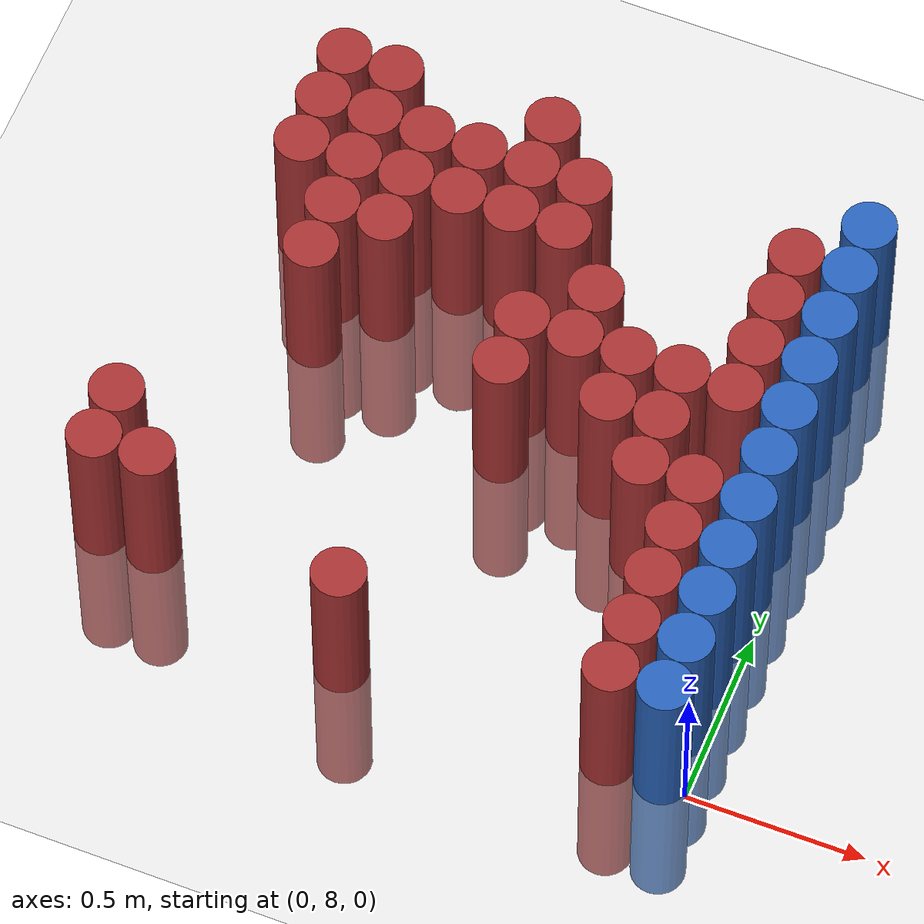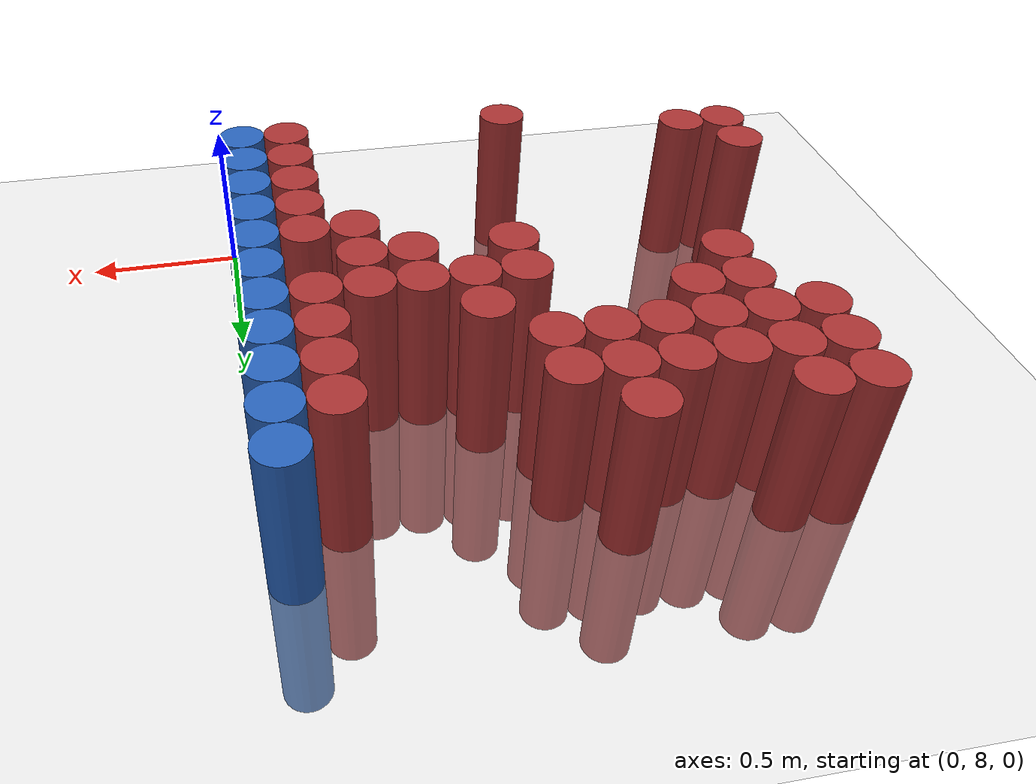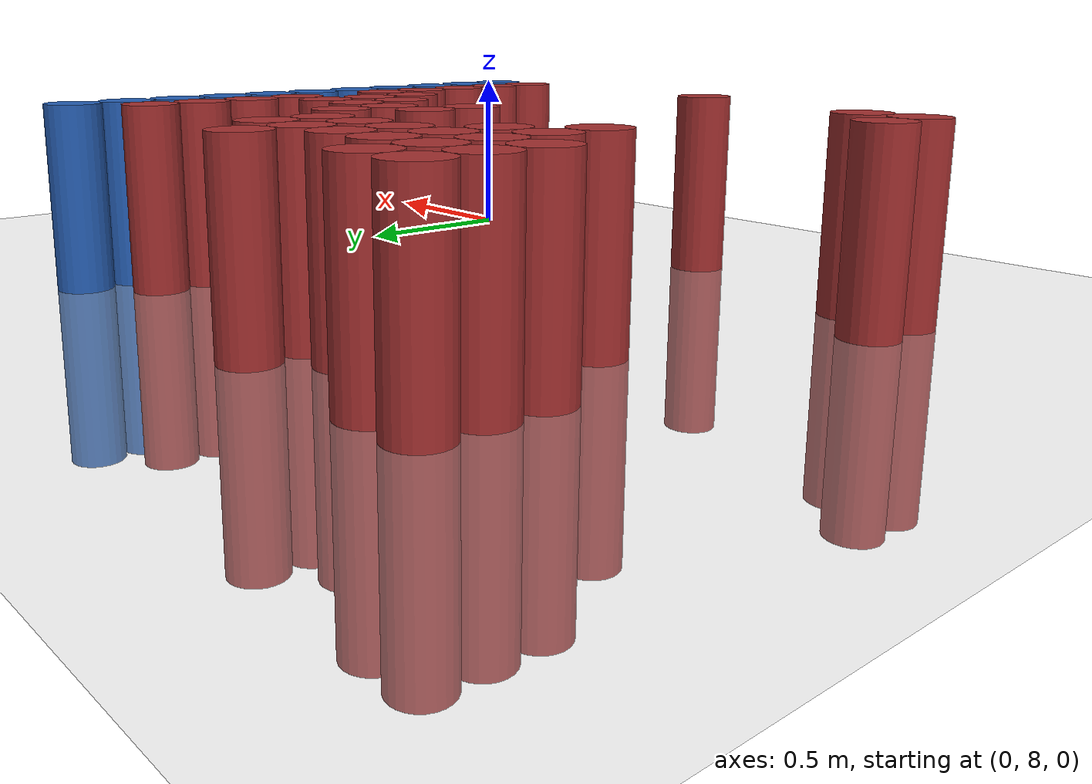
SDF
<sdf version="1.6">
 <world name="default">
  <model name="ground_plane">
   <static>1</static>
   <link name="link">
    <collision name="collision">
     <geometry><plane><normal>0 0 1</normal><size>100 100</size></plane></geometry>
     <surface><friction><ode><mu>100</mu><mu2>50</mu2></ode></friction></surface>
    </collision>
    <visual name="visual">
     <cast_shadows>0</cast_shadows>
     <geometry><plane><normal>0 0 1</normal><size>100 100</size></plane></geometry>
     <material>
      <script><uri>file://media/materials/scripts/gazebo.material</uri><name>Gazebo/Grey</name></script>
     </material>
    </visual>
   </link>
  </model>
  <model name="unit_cylinder_226">
   <static>1</static>
   <pose>-1.725000 8.175000 0.000000 0.000000 0.000000 0.000000</pose>
   <link name="link">
    <inertial>
     <mass>1</mass>
     <inertia><ixx>0.145833</ixx><ixy>0</ixy><ixz>0</ixz><iyy>0.145833</iyy><iyz>0</iyz><izz>0.125</izz></inertia>
    </inertial>
    <collision name="collision">
     <geometry><cylinder><radius>0.075000</radius><length>1</length></cylinder></geometry>
    </collision>
    <visual name="visual">
     <geometry><cylinder><radius>0.075000</radius><length>1</length></cylinder></geometry>
     <material>
      <ambient>0.648000 0.192000 0.192000 1</ambient>
      <diffuse>0.648000 0.192000 0.192000 1</diffuse>
     </material>
     <material>
      <script><name>Gazebo/Grey</name><uri>file://media/materials/scripts/gazebo.material</uri></script>
     </material>
    </visual>
   </link>
  </model>
  <model name="unit_cylinder_227">
   <static>1</static>
   <pose>-1.725000 8.325000 0.000000 0.000000 0.000000 0.000000</pose>
   <link name="link">
    <inertial>
     <mass>1</mass>
     <inertia><ixx>0.145833</ixx><ixy>0</ixy><ixz>0</ixz><iyy>0.145833</iyy><iyz>0</iyz><izz>0.125</izz></inertia>
    </inertial>
    <collision name="collision">
     <geometry><cylinder><radius>0.075000</radius><length>1</length></cylinder></geometry>
    </collision>
    <visual name="visual">
     <geometry><cylinder><radius>0.075000</radius><length>1</length></cylinder></geometry>
     <material>
      <ambient>0.648000 0.192000 0.192000 1</ambient>
      <diffuse>0.648000 0.192000 0.192000 1</diffuse>
     </material>
     <material>
      <script><name>Gazebo/Grey</name><uri>file://media/materials/scripts/gazebo.material</uri></script>
     </material>
    </visual>
   </link>
  </model>
  <model name="unit_cylinder_236">
   <static>1</static>
   <pose>-1.575000 8.175000 0.000000 0.000000 0.000000 0.000000</pose>
   <link name="link">
    <inertial>
     <mass>1</mass>
     <inertia><ixx>0.145833</ixx><ixy>0</ixy><ixz>0</ixz><iyy>0.145833</iyy><iyz>0</iyz><izz>0.125</izz></inertia>
    </inertial>
    <collision name="collision">
     <geometry><cylinder><radius>0.075000</radius><length>1</length></cylinder></geometry>
    </collision>
    <visual name="visual">
     <geometry><cylinder><radius>0.075000</radius><length>1</length></cylinder></geometry>
     <material>
      <ambient>0.648000 0.192000 0.192000 1</ambient>
      <diffuse>0.648000 0.192000 0.192000 1</diffuse>
     </material>
     <material>
      <script><name>Gazebo/Grey</name><uri>file://media/materials/scripts/gazebo.material</uri></script>
     </material>
    </visual>
   </link>
  </model>
  <model name="unit_cylinder_237">
   <static>1</static>
   <pose>-1.575000 9.225000 0.000000 0.000000 0.000000 0.000000</pose>
   <link name="link">
    <inertial>
     <mass>1</mass>
     <inertia><ixx>0.145833</ixx><ixy>0</ixy><ixz>0</ixz><iyy>0.145833</iyy><iyz>0</iyz><izz>0.125</izz></inertia>
    </inertial>
    <collision name="collision">
     <geometry><cylinder><radius>0.075000</radius><length>1</length></cylinder></geometry>
    </collision>
    <visual name="visual">
     <geometry><cylinder><radius>0.075000</radius><length>1</length></cylinder></geometry>
     <material>
      <ambient>0.648000 0.192000 0.192000 1</ambient>
      <diffuse>0.648000 0.192000 0.192000 1</diffuse>
     </material>
     <material>
      <script><name>Gazebo/Grey</name><uri>file://media/materials/scripts/gazebo.material</uri></script>
     </material>
    </visual>
   </link>
  </model>
  <model name="unit_cylinder_238">
   <static>1</static>
   <pose>-1.575000 9.375000 0.000000 0.000000 0.000000 0.000000</pose>
   <link name="link">
    <inertial>
     <mass>1</mass>
     <inertia><ixx>0.145833</ixx><ixy>0</ixy><ixz>0</ixz><iyy>0.145833</iyy><iyz>0</iyz><izz>0.125</izz></inertia>
    </inertial>
    <collision name="collision">
     <geometry><cylinder><radius>0.075000</radius><length>1</length></cylinder></geometry>
    </collision>
    <visual name="visual">
     <geometry><cylinder><radius>0.075000</radius><length>1</length></cylinder></geometry>
     <material>
      <ambient>0.648000 0.192000 0.192000 1</ambient>
      <diffuse>0.648000 0.192000 0.192000 1</diffuse>
     </material>
     <material>
      <script><name>Gazebo/Grey</name><uri>file://media/materials/scripts/gazebo.material</uri></script>
     </material>
    </visual>
   </link>
  </model>
  <model name="unit_cylinder_239">
   <static>1</static>
   <pose>-1.575000 9.525000 0.000000 0.000000 0.000000 0.000000</pose>
   <link name="link">
    <inertial>
     <mass>1</mass>
     <inertia><ixx>0.145833</ixx><ixy>0</ixy><ixz>0</ixz><iyy>0.145833</iyy><iyz>0</iyz><izz>0.125</izz></inertia>
    </inertial>
    <collision name="collision">
     <geometry><cylinder><radius>0.075000</radius><length>1</length></cylinder></geometry>
    </collision>
    <visual name="visual">
     <geometry><cylinder><radius>0.075000</radius><length>1</length></cylinder></geometry>
     <material>
      <ambient>0.648000 0.192000 0.192000 1</ambient>
      <diffuse>0.648000 0.192000 0.192000 1</diffuse>
     </material>
     <material>
      <script><name>Gazebo/Grey</name><uri>file://media/materials/scripts/gazebo.material</uri></script>
     </material>
    </visual>
   </link>
  </model>
  <model name="unit_cylinder_242">
   <static>1</static>
   <pose>-1.425000 8.925000 0.000000 0.000000 0.000000 0.000000</pose>
   <link name="link">
    <inertial>
     <mass>1</mass>
     <inertia><ixx>0.145833</ixx><ixy>0</ixy><ixz>0</ixz><iyy>0.145833</iyy><iyz>0</iyz><izz>0.125</izz></inertia>
    </inertial>
    <collision name="collision">
     <geometry><cylinder><radius>0.075000</radius><length>1</length></cylinder></geometry>
    </collision>
    <visual name="visual">
     <geometry><cylinder><radius>0.075000</radius><length>1</length></cylinder></geometry>
     <material>
      <ambient>0.648000 0.192000 0.192000 1</ambient>
      <diffuse>0.648000 0.192000 0.192000 1</diffuse>
     </material>
     <material>
      <script><name>Gazebo/Grey</name><uri>file://media/materials/scripts/gazebo.material</uri></script>
     </material>
    </visual>
   </link>
  </model>
  <model name="unit_cylinder_243">
   <static>1</static>
   <pose>-1.425000 9.075000 0.000000 0.000000 0.000000 0.000000</pose>
   <link name="link">
    <inertial>
     <mass>1</mass>
     <inertia><ixx>0.145833</ixx><ixy>0</ixy><ixz>0</ixz><iyy>0.145833</iyy><iyz>0</iyz><izz>0.125</izz></inertia>
    </inertial>
    <collision name="collision">
     <geometry><cylinder><radius>0.075000</radius><length>1</length></cylinder></geometry>
    </collision>
    <visual name="visual">
     <geometry><cylinder><radius>0.075000</radius><length>1</length></cylinder></geometry>
     <material>
      <ambient>0.648000 0.192000 0.192000 1</ambient>
      <diffuse>0.648000 0.192000 0.192000 1</diffuse>
     </material>
     <material>
      <script><name>Gazebo/Grey</name><uri>file://media/materials/scripts/gazebo.material</uri></script>
     </material>
    </visual>
   </link>
  </model>
  <model name="unit_cylinder_244">
   <static>1</static>
   <pose>-1.425000 9.225000 0.000000 0.000000 0.000000 0.000000</pose>
   <link name="link">
    <inertial>
     <mass>1</mass>
     <inertia><ixx>0.145833</ixx><ixy>0</ixy><ixz>0</ixz><iyy>0.145833</iyy><iyz>0</iyz><izz>0.125</izz></inertia>
    </inertial>
    <collision name="collision">
     <geometry><cylinder><radius>0.075000</radius><length>1</length></cylinder></geometry>
    </collision>
    <visual name="visual">
     <geometry><cylinder><radius>0.075000</radius><length>1</length></cylinder></geometry>
     <material>
      <ambient>0.648000 0.192000 0.192000 1</ambient>
      <diffuse>0.648000 0.192000 0.192000 1</diffuse>
     </material>
     <material>
      <script><name>Gazebo/Grey</name><uri>file://media/materials/scripts/gazebo.material</uri></script>
     </material>
    </visual>
   </link>
  </model>
  <model name="unit_cylinder_245">
   <static>1</static>
   <pose>-1.425000 9.375000 0.000000 0.000000 0.000000 0.000000</pose>
   <link name="link">
    <inertial>
     <mass>1</mass>
     <inertia><ixx>0.145833</ixx><ixy>0</ixy><ixz>0</ixz><iyy>0.145833</iyy><iyz>0</iyz><izz>0.125</izz></inertia>
    </inertial>
    <collision name="collision">
     <geometry><cylinder><radius>0.075000</radius><length>1</length></cylinder></geometry>
    </collision>
    <visual name="visual">
     <geometry><cylinder><radius>0.075000</radius><length>1</length></cylinder></geometry>
     <material>
      <ambient>0.648000 0.192000 0.192000 1</ambient>
      <diffuse>0.648000 0.192000 0.192000 1</diffuse>
     </material>
     <material>
      <script><name>Gazebo/Grey</name><uri>file://media/materials/scripts/gazebo.material</uri></script>
     </material>
    </visual>
   </link>
  </model>
  <model name="unit_cylinder_246">
   <static>1</static>
   <pose>-1.425000 9.525000 0.000000 0.000000 0.000000 0.000000</pose>
   <link name="link">
    <inertial>
     <mass>1</mass>
     <inertia><ixx>0.145833</ixx><ixy>0</ixy><ixz>0</ixz><iyy>0.145833</iyy><iyz>0</iyz><izz>0.125</izz></inertia>
    </inertial>
    <collision name="collision">
     <geometry><cylinder><radius>0.075000</radius><length>1</length></cylinder></geometry>
    </collision>
    <visual name="visual">
     <geometry><cylinder><radius>0.075000</radius><length>1</length></cylinder></geometry>
     <material>
      <ambient>0.648000 0.192000 0.192000 1</ambient>
      <diffuse>0.648000 0.192000 0.192000 1</diffuse>
     </material>
     <material>
      <script><name>Gazebo/Grey</name><uri>file://media/materials/scripts/gazebo.material</uri></script>
     </material>
    </visual>
   </link>
  </model>
  <model name="unit_cylinder_249">
   <static>1</static>
   <pose>-1.275000 9.075000 0.000000 0.000000 0.000000 0.000000</pose>
   <link name="link">
    <inertial>
     <mass>1</mass>
     <inertia><ixx>0.145833</ixx><ixy>0</ixy><ixz>0</ixz><iyy>0.145833</iyy><iyz>0</iyz><izz>0.125</izz></inertia>
    </inertial>
    <collision name="collision">
     <geometry><cylinder><radius>0.075000</radius><length>1</length></cylinder></geometry>
    </collision>
    <visual name="visual">
     <geometry><cylinder><radius>0.075000</radius><length>1</length></cylinder></geometry>
     <material>
      <ambient>0.648000 0.192000 0.192000 1</ambient>
      <diffuse>0.648000 0.192000 0.192000 1</diffuse>
     </material>
     <material>
      <script><name>Gazebo/Grey</name><uri>file://media/materials/scripts/gazebo.material</uri></script>
     </material>
    </visual>
   </link>
  </model>
  <model name="unit_cylinder_250">
   <static>1</static>
   <pose>-1.275000 9.225000 0.000000 0.000000 0.000000 0.000000</pose>
   <link name="link">
    <inertial>
     <mass>1</mass>
     <inertia><ixx>0.145833</ixx><ixy>0</ixy><ixz>0</ixz><iyy>0.145833</iyy><iyz>0</iyz><izz>0.125</izz></inertia>
    </inertial>
    <collision name="collision">
     <geometry><cylinder><radius>0.075000</radius><length>1</length></cylinder></geometry>
    </collision>
    <visual name="visual">
     <geometry><cylinder><radius>0.075000</radius><length>1</length></cylinder></geometry>
     <material>
      <ambient>0.648000 0.192000 0.192000 1</ambient>
      <diffuse>0.648000 0.192000 0.192000 1</diffuse>
     </material>
     <material>
      <script><name>Gazebo/Grey</name><uri>file://media/materials/scripts/gazebo.material</uri></script>
     </material>
    </visual>
   </link>
  </model>
  <model name="unit_cylinder_251">
   <static>1</static>
   <pose>-1.275000 9.375000 0.000000 0.000000 0.000000 0.000000</pose>
   <link name="link">
    <inertial>
     <mass>1</mass>
     <inertia><ixx>0.145833</ixx><ixy>0</ixy><ixz>0</ixz><iyy>0.145833</iyy><iyz>0</iyz><izz>0.125</izz></inertia>
    </inertial>
    <collision name="collision">
     <geometry><cylinder><radius>0.075000</radius><length>1</length></cylinder></geometry>
    </collision>
    <visual name="visual">
     <geometry><cylinder><radius>0.075000</radius><length>1</length></cylinder></geometry>
     <material>
      <ambient>0.648000 0.192000 0.192000 1</ambient>
      <diffuse>0.648000 0.192000 0.192000 1</diffuse>
     </material>
     <material>
      <script><name>Gazebo/Grey</name><uri>file://media/materials/scripts/gazebo.material</uri></script>
     </material>
    </visual>
   </link>
  </model>
  <model name="unit_cylinder_260">
   <static>1</static>
   <pose>-1.125000 9.225000 0.000000 0.000000 0.000000 0.000000</pose>
   <link name="link">
    <inertial>
     <mass>1</mass>
     <inertia><ixx>0.145833</ixx><ixy>0</ixy><ixz>0</ixz><iyy>0.145833</iyy><iyz>0</iyz><izz>0.125</izz></inertia>
    </inertial>
    <collision name="collision">
     <geometry><cylinder><radius>0.075000</radius><length>1</length></cylinder></geometry>
    </collision>
    <visual name="visual">
     <geometry><cylinder><radius>0.075000</radius><length>1</length></cylinder></geometry>
     <material>
      <ambient>0.648000 0.192000 0.192000 1</ambient>
      <diffuse>0.648000 0.192000 0.192000 1</diffuse>
     </material>
     <material>
      <script><name>Gazebo/Grey</name><uri>file://media/materials/scripts/gazebo.material</uri></script>
     </material>
    </visual>
   </link>
  </model>
  <model name="unit_cylinder_261">
   <static>1</static>
   <pose>-1.125000 9.375000 0.000000 0.000000 0.000000 0.000000</pose>
   <link name="link">
    <inertial>
     <mass>1</mass>
     <inertia><ixx>0.145833</ixx><ixy>0</ixy><ixz>0</ixz><iyy>0.145833</iyy><iyz>0</iyz><izz>0.125</izz></inertia>
    </inertial>
    <collision name="collision">
     <geometry><cylinder><radius>0.075000</radius><length>1</length></cylinder></geometry>
    </collision>
    <visual name="visual">
     <geometry><cylinder><radius>0.075000</radius><length>1</length></cylinder></geometry>
     <material>
      <ambient>0.648000 0.192000 0.192000 1</ambient>
      <diffuse>0.648000 0.192000 0.192000 1</diffuse>
     </material>
     <material>
      <script><name>Gazebo/Grey</name><uri>file://media/materials/scripts/gazebo.material</uri></script>
     </material>
    </visual>
   </link>
  </model>
  <model name="unit_cylinder_267">
   <static>1</static>
   <pose>-0.975000 8.025000 0.000000 0.000000 0.000000 0.000000</pose>
   <link name="link">
    <inertial>
     <mass>1</mass>
     <inertia><ixx>0.145833</ixx><ixy>0</ixy><ixz>0</ixz><iyy>0.145833</iyy><iyz>0</iyz><izz>0.125</izz></inertia>
    </inertial>
    <collision name="collision">
     <geometry><cylinder><radius>0.075000</radius><length>1</length></cylinder></geometry>
    </collision>
    <visual name="visual">
     <geometry><cylinder><radius>0.075000</radius><length>1</length></cylinder></geometry>
     <material>
      <ambient>0.648000 0.192000 0.192000 1</ambient>
      <diffuse>0.648000 0.192000 0.192000 1</diffuse>
     </material>
     <material>
      <script><name>Gazebo/Grey</name><uri>file://media/materials/scripts/gazebo.material</uri></script>
     </material>
    </visual>
   </link>
  </model>
  <model name="unit_cylinder_268">
   <static>1</static>
   <pose>-0.975000 9.225000 0.000000 0.000000 0.000000 0.000000</pose>
   <link name="link">
    <inertial>
     <mass>1</mass>
     <inertia><ixx>0.145833</ixx><ixy>0</ixy><ixz>0</ixz><iyy>0.145833</iyy><iyz>0</iyz><izz>0.125</izz></inertia>
    </inertial>
    <collision name="collision">
     <geometry><cylinder><radius>0.075000</radius><length>1</length></cylinder></geometry>
    </collision>
    <visual name="visual">
     <geometry><cylinder><radius>0.075000</radius><length>1</length></cylinder></geometry>
     <material>
      <ambient>0.648000 0.192000 0.192000 1</ambient>
      <diffuse>0.648000 0.192000 0.192000 1</diffuse>
     </material>
     <material>
      <script><name>Gazebo/Grey</name><uri>file://media/materials/scripts/gazebo.material</uri></script>
     </material>
    </visual>
   </link>
  </model>
  <model name="unit_cylinder_269">
   <static>1</static>
   <pose>-0.975000 9.375000 0.000000 0.000000 0.000000 0.000000</pose>
   <link name="link">
    <inertial>
     <mass>1</mass>
     <inertia><ixx>0.145833</ixx><ixy>0</ixy><ixz>0</ixz><iyy>0.145833</iyy><iyz>0</iyz><izz>0.125</izz></inertia>
    </inertial>
    <collision name="collision">
     <geometry><cylinder><radius>0.075000</radius><length>1</length></cylinder></geometry>
    </collision>
    <visual name="visual">
     <geometry><cylinder><radius>0.075000</radius><length>1</length></cylinder></geometry>
     <material>
      <ambient>0.648000 0.192000 0.192000 1</ambient>
      <diffuse>0.648000 0.192000 0.192000 1</diffuse>
     </material>
     <material>
      <script><name>Gazebo/Grey</name><uri>file://media/materials/scripts/gazebo.material</uri></script>
     </material>
    </visual>
   </link>
  </model>
  <model name="unit_cylinder_270">
   <static>1</static>
   <pose>-0.975000 9.525000 0.000000 0.000000 0.000000 0.000000</pose>
   <link name="link">
    <inertial>
     <mass>1</mass>
     <inertia><ixx>0.145833</ixx><ixy>0</ixy><ixz>0</ixz><iyy>0.145833</iyy><iyz>0</iyz><izz>0.125</izz></inertia>
    </inertial>
    <collision name="collision">
     <geometry><cylinder><radius>0.075000</radius><length>1</length></cylinder></geometry>
    </collision>
    <visual name="visual">
     <geometry><cylinder><radius>0.075000</radius><length>1</length></cylinder></geometry>
     <material>
      <ambient>0.648000 0.192000 0.192000 1</ambient>
      <diffuse>0.648000 0.192000 0.192000 1</diffuse>
     </material>
     <material>
      <script><name>Gazebo/Grey</name><uri>file://media/materials/scripts/gazebo.material</uri></script>
     </material>
    </visual>
   </link>
  </model>
  <model name="unit_cylinder_278">
   <static>1</static>
   <pose>-0.825000 8.775000 0.000000 0.000000 0.000000 0.000000</pose>
   <link name="link">
    <inertial>
     <mass>1</mass>
     <inertia><ixx>0.145833</ixx><ixy>0</ixy><ixz>0</ixz><iyy>0.145833</iyy><iyz>0</iyz><izz>0.125</izz></inertia>
    </inertial>
    <collision name="collision">
     <geometry><cylinder><radius>0.075000</radius><length>1</length></cylinder></geometry>
    </collision>
    <visual name="visual">
     <geometry><cylinder><radius>0.075000</radius><length>1</length></cylinder></geometry>
     <material>
      <ambient>0.648000 0.192000 0.192000 1</ambient>
      <diffuse>0.648000 0.192000 0.192000 1</diffuse>
     </material>
     <material>
      <script><name>Gazebo/Grey</name><uri>file://media/materials/scripts/gazebo.material</uri></script>
     </material>
    </visual>
   </link>
  </model>
  <model name="unit_cylinder_279">
   <static>1</static>
   <pose>-0.825000 8.925000 0.000000 0.000000 0.000000 0.000000</pose>
   <link name="link">
    <inertial>
     <mass>1</mass>
     <inertia><ixx>0.145833</ixx><ixy>0</ixy><ixz>0</ixz><iyy>0.145833</iyy><iyz>0</iyz><izz>0.125</izz></inertia>
    </inertial>
    <collision name="collision">
     <geometry><cylinder><radius>0.075000</radius><length>1</length></cylinder></geometry>
    </collision>
    <visual name="visual">
     <geometry><cylinder><radius>0.075000</radius><length>1</length></cylinder></geometry>
     <material>
      <ambient>0.648000 0.192000 0.192000 1</ambient>
      <diffuse>0.648000 0.192000 0.192000 1</diffuse>
     </material>
     <material>
      <script><name>Gazebo/Grey</name><uri>file://media/materials/scripts/gazebo.material</uri></script>
     </material>
    </visual>
   </link>
  </model>
  <model name="unit_cylinder_280">
   <static>1</static>
   <pose>-0.825000 9.225000 0.000000 0.000000 0.000000 0.000000</pose>
   <link name="link">
    <inertial>
     <mass>1</mass>
     <inertia><ixx>0.145833</ixx><ixy>0</ixy><ixz>0</ixz><iyy>0.145833</iyy><iyz>0</iyz><izz>0.125</izz></inertia>
    </inertial>
    <collision name="collision">
     <geometry><cylinder><radius>0.075000</radius><length>1</length></cylinder></geometry>
    </collision>
    <visual name="visual">
     <geometry><cylinder><radius>0.075000</radius><length>1</length></cylinder></geometry>
     <material>
      <ambient>0.648000 0.192000 0.192000 1</ambient>
      <diffuse>0.648000 0.192000 0.192000 1</diffuse>
     </material>
     <material>
      <script><name>Gazebo/Grey</name><uri>file://media/materials/scripts/gazebo.material</uri></script>
     </material>
    </visual>
   </link>
  </model>
  <model name="unit_cylinder_281">
   <static>1</static>
   <pose>-0.825000 9.375000 0.000000 0.000000 0.000000 0.000000</pose>
   <link name="link">
    <inertial>
     <mass>1</mass>
     <inertia><ixx>0.145833</ixx><ixy>0</ixy><ixz>0</ixz><iyy>0.145833</iyy><iyz>0</iyz><izz>0.125</izz></inertia>
    </inertial>
    <collision name="collision">
     <geometry><cylinder><radius>0.075000</radius><length>1</length></cylinder></geometry>
    </collision>
    <visual name="visual">
     <geometry><cylinder><radius>0.075000</radius><length>1</length></cylinder></geometry>
     <material>
      <ambient>0.648000 0.192000 0.192000 1</ambient>
      <diffuse>0.648000 0.192000 0.192000 1</diffuse>
     </material>
     <material>
      <script><name>Gazebo/Grey</name><uri>file://media/materials/scripts/gazebo.material</uri></script>
     </material>
    </visual>
   </link>
  </model>
  <model name="unit_cylinder_288">
   <static>1</static>
   <pose>-0.675000 8.925000 0.000000 0.000000 0.000000 0.000000</pose>
   <link name="link">
    <inertial>
     <mass>1</mass>
     <inertia><ixx>0.145833</ixx><ixy>0</ixy><ixz>0</ixz><iyy>0.145833</iyy><iyz>0</iyz><izz>0.125</izz></inertia>
    </inertial>
    <collision name="collision">
     <geometry><cylinder><radius>0.075000</radius><length>1</length></cylinder></geometry>
    </collision>
    <visual name="visual">
     <geometry><cylinder><radius>0.075000</radius><length>1</length></cylinder></geometry>
     <material>
      <ambient>0.648000 0.192000 0.192000 1</ambient>
      <diffuse>0.648000 0.192000 0.192000 1</diffuse>
     </material>
     <material>
      <script><name>Gazebo/Grey</name><uri>file://media/materials/scripts/gazebo.material</uri></script>
     </material>
    </visual>
   </link>
  </model>
  <model name="unit_cylinder_289">
   <static>1</static>
   <pose>-0.675000 9.075000 0.000000 0.000000 0.000000 0.000000</pose>
   <link name="link">
    <inertial>
     <mass>1</mass>
     <inertia><ixx>0.145833</ixx><ixy>0</ixy><ixz>0</ixz><iyy>0.145833</iyy><iyz>0</iyz><izz>0.125</izz></inertia>
    </inertial>
    <collision name="collision">
     <geometry><cylinder><radius>0.075000</radius><length>1</length></cylinder></geometry>
    </collision>
    <visual name="visual">
     <geometry><cylinder><radius>0.075000</radius><length>1</length></cylinder></geometry>
     <material>
      <ambient>0.648000 0.192000 0.192000 1</ambient>
      <diffuse>0.648000 0.192000 0.192000 1</diffuse>
     </material>
     <material>
      <script><name>Gazebo/Grey</name><uri>file://media/materials/scripts/gazebo.material</uri></script>
     </material>
    </visual>
   </link>
  </model>
  <model name="unit_cylinder_293">
   <static>1</static>
   <pose>-0.525000 8.775000 0.000000 0.000000 0.000000 0.000000</pose>
   <link name="link">
    <inertial>
     <mass>1</mass>
     <inertia><ixx>0.145833</ixx><ixy>0</ixy><ixz>0</ixz><iyy>0.145833</iyy><iyz>0</iyz><izz>0.125</izz></inertia>
    </inertial>
    <collision name="collision">
     <geometry><cylinder><radius>0.075000</radius><length>1</length></cylinder></geometry>
    </collision>
    <visual name="visual">
     <geometry><cylinder><radius>0.075000</radius><length>1</length></cylinder></geometry>
     <material>
      <ambient>0.648000 0.192000 0.192000 1</ambient>
      <diffuse>0.648000 0.192000 0.192000 1</diffuse>
     </material>
     <material>
      <script><name>Gazebo/Grey</name><uri>file://media/materials/scripts/gazebo.material</uri></script>
     </material>
    </visual>
   </link>
  </model>
  <model name="unit_cylinder_294">
   <static>1</static>
   <pose>-0.525000 8.925000 0.000000 0.000000 0.000000 0.000000</pose>
   <link name="link">
    <inertial>
     <mass>1</mass>
     <inertia><ixx>0.145833</ixx><ixy>0</ixy><ixz>0</ixz><iyy>0.145833</iyy><iyz>0</iyz><izz>0.125</izz></inertia>
    </inertial>
    <collision name="collision">
     <geometry><cylinder><radius>0.075000</radius><length>1</length></cylinder></geometry>
    </collision>
    <visual name="visual">
     <geometry><cylinder><radius>0.075000</radius><length>1</length></cylinder></geometry>
     <material>
      <ambient>0.648000 0.192000 0.192000 1</ambient>
      <diffuse>0.648000 0.192000 0.192000 1</diffuse>
     </material>
     <material>
      <script><name>Gazebo/Grey</name><uri>file://media/materials/scripts/gazebo.material</uri></script>
     </material>
    </visual>
   </link>
  </model>
  <model name="unit_cylinder_301">
   <static>1</static>
   <pose>-0.375000 8.625000 0.000000 0.000000 0.000000 0.000000</pose>
   <link name="link">
    <inertial>
     <mass>1</mass>
     <inertia><ixx>0.145833</ixx><ixy>0</ixy><ixz>0</ixz><iyy>0.145833</iyy><iyz>0</iyz><izz>0.125</izz></inertia>
    </inertial>
    <collision name="collision">
     <geometry><cylinder><radius>0.075000</radius><length>1</length></cylinder></geometry>
    </collision>
    <visual name="visual">
     <geometry><cylinder><radius>0.075000</radius><length>1</length></cylinder></geometry>
     <material>
      <ambient>0.648000 0.192000 0.192000 1</ambient>
      <diffuse>0.648000 0.192000 0.192000 1</diffuse>
     </material>
     <material>
      <script><name>Gazebo/Grey</name><uri>file://media/materials/scripts/gazebo.material</uri></script>
     </material>
    </visual>
   </link>
  </model>
  <model name="unit_cylinder_302">
   <static>1</static>
   <pose>-0.375000 8.775000 0.000000 0.000000 0.000000 0.000000</pose>
   <link name="link">
    <inertial>
     <mass>1</mass>
     <inertia><ixx>0.145833</ixx><ixy>0</ixy><ixz>0</ixz><iyy>0.145833</iyy><iyz>0</iyz><izz>0.125</izz></inertia>
    </inertial>
    <collision name="collision">
     <geometry><cylinder><radius>0.075000</radius><length>1</length></cylinder></geometry>
    </collision>
    <visual name="visual">
     <geometry><cylinder><radius>0.075000</radius><length>1</length></cylinder></geometry>
     <material>
      <ambient>0.648000 0.192000 0.192000 1</ambient>
      <diffuse>0.648000 0.192000 0.192000 1</diffuse>
     </material>
     <material>
      <script><name>Gazebo/Grey</name><uri>file://media/materials/scripts/gazebo.material</uri></script>
     </material>
    </visual>
   </link>
  </model>
  <model name="unit_cylinder_303">
   <static>1</static>
   <pose>-0.375000 8.925000 0.000000 0.000000 0.000000 0.000000</pose>
   <link name="link">
    <inertial>
     <mass>1</mass>
     <inertia><ixx>0.145833</ixx><ixy>0</ixy><ixz>0</ixz><iyy>0.145833</iyy><iyz>0</iyz><izz>0.125</izz></inertia>
    </inertial>
    <collision name="collision">
     <geometry><cylinder><radius>0.075000</radius><length>1</length></cylinder></geometry>
    </collision>
    <visual name="visual">
     <geometry><cylinder><radius>0.075000</radius><length>1</length></cylinder></geometry>
     <material>
      <ambient>0.648000 0.192000 0.192000 1</ambient>
      <diffuse>0.648000 0.192000 0.192000 1</diffuse>
     </material>
     <material>
      <script><name>Gazebo/Grey</name><uri>file://media/materials/scripts/gazebo.material</uri></script>
     </material>
    </visual>
   </link>
  </model>
  <model name="unit_cylinder_317">
   <static>1</static>
   <pose>-0.225000 8.025000 0.000000 0.000000 0.000000 0.000000</pose>
   <link name="link">
    <inertial>
     <mass>1</mass>
     <inertia><ixx>0.145833</ixx><ixy>0</ixy><ixz>0</ixz><iyy>0.145833</iyy><iyz>0</iyz><izz>0.125</izz></inertia>
    </inertial>
    <collision name="collision">
     <geometry><cylinder><radius>0.075000</radius><length>1</length></cylinder></geometry>
    </collision>
    <visual name="visual">
     <geometry><cylinder><radius>0.075000</radius><length>1</length></cylinder></geometry>
     <material>
      <ambient>0.648000 0.192000 0.192000 1</ambient>
      <diffuse>0.648000 0.192000 0.192000 1</diffuse>
     </material>
     <material>
      <script><name>Gazebo/Grey</name><uri>file://media/materials/scripts/gazebo.material</uri></script>
     </material>
    </visual>
   </link>
  </model>
  <model name="unit_cylinder_318">
   <static>1</static>
   <pose>-0.225000 8.175000 0.000000 0.000000 0.000000 0.000000</pose>
   <link name="link">
    <inertial>
     <mass>1</mass>
     <inertia><ixx>0.145833</ixx><ixy>0</ixy><ixz>0</ixz><iyy>0.145833</iyy><iyz>0</iyz><izz>0.125</izz></inertia>
    </inertial>
    <collision name="collision">
     <geometry><cylinder><radius>0.075000</radius><length>1</length></cylinder></geometry>
    </collision>
    <visual name="visual">
     <geometry><cylinder><radius>0.075000</radius><length>1</length></cylinder></geometry>
     <material>
      <ambient>0.648000 0.192000 0.192000 1</ambient>
      <diffuse>0.648000 0.192000 0.192000 1</diffuse>
     </material>
     <material>
      <script><name>Gazebo/Grey</name><uri>file://media/materials/scripts/gazebo.material</uri></script>
     </material>
    </visual>
   </link>
  </model>
  <model name="unit_cylinder_319">
   <static>1</static>
   <pose>-0.225000 8.325000 0.000000 0.000000 0.000000 0.000000</pose>
   <link name="link">
    <inertial>
     <mass>1</mass>
     <inertia><ixx>0.145833</ixx><ixy>0</ixy><ixz>0</ixz><iyy>0.145833</iyy><iyz>0</iyz><izz>0.125</izz></inertia>
    </inertial>
    <collision name="collision">
     <geometry><cylinder><radius>0.075000</radius><length>1</length></cylinder></geometry>
    </collision>
    <visual name="visual">
     <geometry><cylinder><radius>0.075000</radius><length>1</length></cylinder></geometry>
     <material>
      <ambient>0.648000 0.192000 0.192000 1</ambient>
      <diffuse>0.648000 0.192000 0.192000 1</diffuse>
     </material>
     <material>
      <script><name>Gazebo/Grey</name><uri>file://media/materials/scripts/gazebo.material</uri></script>
     </material>
    </visual>
   </link>
  </model>
  <model name="unit_cylinder_320">
   <static>1</static>
   <pose>-0.225000 8.475000 0.000000 0.000000 0.000000 0.000000</pose>
   <link name="link">
    <inertial>
     <mass>1</mass>
     <inertia><ixx>0.145833</ixx><ixy>0</ixy><ixz>0</ixz><iyy>0.145833</iyy><iyz>0</iyz><izz>0.125</izz></inertia>
    </inertial>
    <collision name="collision">
     <geometry><cylinder><radius>0.075000</radius><length>1</length></cylinder></geometry>
    </collision>
    <visual name="visual">
     <geometry><cylinder><radius>0.075000</radius><length>1</length></cylinder></geometry>
     <material>
      <ambient>0.648000 0.192000 0.192000 1</ambient>
      <diffuse>0.648000 0.192000 0.192000 1</diffuse>
     </material>
     <material>
      <script><name>Gazebo/Grey</name><uri>file://media/materials/scripts/gazebo.material</uri></script>
     </material>
    </visual>
   </link>
  </model>
  <model name="unit_cylinder_321">
   <static>1</static>
   <pose>-0.225000 8.625000 0.000000 0.000000 0.000000 0.000000</pose>
   <link name="link">
    <inertial>
     <mass>1</mass>
     <inertia><ixx>0.145833</ixx><ixy>0</ixy><ixz>0</ixz><iyy>0.145833</iyy><iyz>0</iyz><izz>0.125</izz></inertia>
    </inertial>
    <collision name="collision">
     <geometry><cylinder><radius>0.075000</radius><length>1</length></cylinder></geometry>
    </collision>
    <visual name="visual">
     <geometry><cylinder><radius>0.075000</radius><length>1</length></cylinder></geometry>
     <material>
      <ambient>0.648000 0.192000 0.192000 1</ambient>
      <diffuse>0.648000 0.192000 0.192000 1</diffuse>
     </material>
     <material>
      <script><name>Gazebo/Grey</name><uri>file://media/materials/scripts/gazebo.material</uri></script>
     </material>
    </visual>
   </link>
  </model>
  <model name="unit_cylinder_322">
   <static>1</static>
   <pose>-0.225000 8.925000 0.000000 0.000000 0.000000 0.000000</pose>
   <link name="link">
    <inertial>
     <mass>1</mass>
     <inertia><ixx>0.145833</ixx><ixy>0</ixy><ixz>0</ixz><iyy>0.145833</iyy><iyz>0</iyz><izz>0.125</izz></inertia>
    </inertial>
    <collision name="collision">
     <geometry><cylinder><radius>0.075000</radius><length>1</length></cylinder></geometry>
    </collision>
    <visual name="visual">
     <geometry><cylinder><radius>0.075000</radius><length>1</length></cylinder></geometry>
     <material>
      <ambient>0.648000 0.192000 0.192000 1</ambient>
      <diffuse>0.648000 0.192000 0.192000 1</diffuse>
     </material>
     <material>
      <script><name>Gazebo/Grey</name><uri>file://media/materials/scripts/gazebo.material</uri></script>
     </material>
    </visual>
   </link>
  </model>
  <model name="unit_cylinder_323">
   <static>1</static>
   <pose>-0.225000 9.075000 0.000000 0.000000 0.000000 0.000000</pose>
   <link name="link">
    <inertial>
     <mass>1</mass>
     <inertia><ixx>0.145833</ixx><ixy>0</ixy><ixz>0</ixz><iyy>0.145833</iyy><iyz>0</iyz><izz>0.125</izz></inertia>
    </inertial>
    <collision name="collision">
     <geometry><cylinder><radius>0.075000</radius><length>1</length></cylinder></geometry>
    </collision>
    <visual name="visual">
     <geometry><cylinder><radius>0.075000</radius><length>1</length></cylinder></geometry>
     <material>
      <ambient>0.648000 0.192000 0.192000 1</ambient>
      <diffuse>0.648000 0.192000 0.192000 1</diffuse>
     </material>
     <material>
      <script><name>Gazebo/Grey</name><uri>file://media/materials/scripts/gazebo.material</uri></script>
     </material>
    </visual>
   </link>
  </model>
  <model name="unit_cylinder_324">
   <static>1</static>
   <pose>-0.225000 9.225000 0.000000 0.000000 0.000000 0.000000</pose>
   <link name="link">
    <inertial>
     <mass>1</mass>
     <inertia><ixx>0.145833</ixx><ixy>0</ixy><ixz>0</ixz><iyy>0.145833</iyy><iyz>0</iyz><izz>0.125</izz></inertia>
    </inertial>
    <collision name="collision">
     <geometry><cylinder><radius>0.075000</radius><length>1</length></cylinder></geometry>
    </collision>
    <visual name="visual">
     <geometry><cylinder><radius>0.075000</radius><length>1</length></cylinder></geometry>
     <material>
      <ambient>0.648000 0.192000 0.192000 1</ambient>
      <diffuse>0.648000 0.192000 0.192000 1</diffuse>
     </material>
     <material>
      <script><name>Gazebo/Grey</name><uri>file://media/materials/scripts/gazebo.material</uri></script>
     </material>
    </visual>
   </link>
  </model>
  <model name="unit_cylinder_325">
   <static>1</static>
   <pose>-0.225000 9.375000 0.000000 0.000000 0.000000 0.000000</pose>
   <link name="link">
    <inertial>
     <mass>1</mass>
     <inertia><ixx>0.145833</ixx><ixy>0</ixy><ixz>0</ixz><iyy>0.145833</iyy><iyz>0</iyz><izz>0.125</izz></inertia>
    </inertial>
    <collision name="collision">
     <geometry><cylinder><radius>0.075000</radius><length>1</length></cylinder></geometry>
    </collision>
    <visual name="visual">
     <geometry><cylinder><radius>0.075000</radius><length>1</length></cylinder></geometry>
     <material>
      <ambient>0.648000 0.192000 0.192000 1</ambient>
      <diffuse>0.648000 0.192000 0.192000 1</diffuse>
     </material>
     <material>
      <script><name>Gazebo/Grey</name><uri>file://media/materials/scripts/gazebo.material</uri></script>
     </material>
    </visual>
   </link>
  </model>
  <model name="unit_cylinder_345">
   <static>1</static>
   <pose>-0.075000 8.025000 0.000000 0.000000 0.000000 0.000000</pose>
   <link name="link">
    <inertial>
     <mass>1</mass>
     <inertia><ixx>0.145833</ixx><ixy>0</ixy><ixz>0</ixz><iyy>0.145833</iyy><iyz>0</iyz><izz>0.125</izz></inertia>
    </inertial>
    <collision name="collision">
     <geometry><cylinder><radius>0.075000</radius><length>1</length></cylinder></geometry>
    </collision>
    <visual name="visual">
     <geometry><cylinder><radius>0.075000</radius><length>1</length></cylinder></geometry>
     <material>
      <ambient>0.152000 0.379000 0.720000 1</ambient>
      <diffuse>0.152000 0.379000 0.720000 1</diffuse>
     </material>
     <material>
      <script><name>Gazebo/Grey</name><uri>file://media/materials/scripts/gazebo.material</uri></script>
     </material>
    </visual>
   </link>
  </model>
  <model name="unit_cylinder_346">
   <static>1</static>
   <pose>-0.075000 8.175000 0.000000 0.000000 0.000000 0.000000</pose>
   <link name="link">
    <inertial>
     <mass>1</mass>
     <inertia><ixx>0.145833</ixx><ixy>0</ixy><ixz>0</ixz><iyy>0.145833</iyy><iyz>0</iyz><izz>0.125</izz></inertia>
    </inertial>
    <collision name="collision">
     <geometry><cylinder><radius>0.075000</radius><length>1</length></cylinder></geometry>
    </collision>
    <visual name="visual">
     <geometry><cylinder><radius>0.075000</radius><length>1</length></cylinder></geometry>
     <material>
      <ambient>0.152000 0.379000 0.720000 1</ambient>
      <diffuse>0.152000 0.379000 0.720000 1</diffuse>
     </material>
     <material>
      <script><name>Gazebo/Grey</name><uri>file://media/materials/scripts/gazebo.material</uri></script>
     </material>
    </visual>
   </link>
  </model>
  <model name="unit_cylinder_347">
   <static>1</static>
   <pose>-0.075000 8.325000 0.000000 0.000000 0.000000 0.000000</pose>
   <link name="link">
    <inertial>
     <mass>1</mass>
     <inertia><ixx>0.145833</ixx><ixy>0</ixy><ixz>0</ixz><iyy>0.145833</iyy><iyz>0</iyz><izz>0.125</izz></inertia>
    </inertial>
    <collision name="collision">
     <geometry><cylinder><radius>0.075000</radius><length>1</length></cylinder></geometry>
    </collision>
    <visual name="visual">
     <geometry><cylinder><radius>0.075000</radius><length>1</length></cylinder></geometry>
     <material>
      <ambient>0.152000 0.379000 0.720000 1</ambient>
      <diffuse>0.152000 0.379000 0.720000 1</diffuse>
     </material>
     <material>
      <script><name>Gazebo/Grey</name><uri>file://media/materials/scripts/gazebo.material</uri></script>
     </material>
    </visual>
   </link>
  </model>
  <model name="unit_cylinder_348">
   <static>1</static>
   <pose>-0.075000 8.475000 0.000000 0.000000 0.000000 0.000000</pose>
   <link name="link">
    <inertial>
     <mass>1</mass>
     <inertia><ixx>0.145833</ixx><ixy>0</ixy><ixz>0</ixz><iyy>0.145833</iyy><iyz>0</iyz><izz>0.125</izz></inertia>
    </inertial>
    <collision name="collision">
     <geometry><cylinder><radius>0.075000</radius><length>1</length></cylinder></geometry>
    </collision>
    <visual name="visual">
     <geometry><cylinder><radius>0.075000</radius><length>1</length></cylinder></geometry>
     <material>
      <ambient>0.152000 0.379000 0.720000 1</ambient>
      <diffuse>0.152000 0.379000 0.720000 1</diffuse>
     </material>
     <material>
      <script><name>Gazebo/Grey</name><uri>file://media/materials/scripts/gazebo.material</uri></script>
     </material>
    </visual>
   </link>
  </model>
  <model name="unit_cylinder_349">
   <static>1</static>
   <pose>-0.075000 8.625000 0.000000 0.000000 0.000000 0.000000</pose>
   <link name="link">
    <inertial>
     <mass>1</mass>
     <inertia><ixx>0.145833</ixx><ixy>0</ixy><ixz>0</ixz><iyy>0.145833</iyy><iyz>0</iyz><izz>0.125</izz></inertia>
    </inertial>
    <collision name="collision">
     <geometry><cylinder><radius>0.075000</radius><length>1</length></cylinder></geometry>
    </collision>
    <visual name="visual">
     <geometry><cylinder><radius>0.075000</radius><length>1</length></cylinder></geometry>
     <material>
      <ambient>0.152000 0.379000 0.720000 1</ambient>
      <diffuse>0.152000 0.379000 0.720000 1</diffuse>
     </material>
     <material>
      <script><name>Gazebo/Grey</name><uri>file://media/materials/scripts/gazebo.material</uri></script>
     </material>
    </visual>
   </link>
  </model>
  <model name="unit_cylinder_350">
   <static>1</static>
   <pose>-0.075000 8.775000 0.000000 0.000000 0.000000 0.000000</pose>
   <link name="link">
    <inertial>
     <mass>1</mass>
     <inertia><ixx>0.145833</ixx><ixy>0</ixy><ixz>0</ixz><iyy>0.145833</iyy><iyz>0</iyz><izz>0.125</izz></inertia>
    </inertial>
    <collision name="collision">
     <geometry><cylinder><radius>0.075000</radius><length>1</length></cylinder></geometry>
    </collision>
    <visual name="visual">
     <geometry><cylinder><radius>0.075000</radius><length>1</length></cylinder></geometry>
     <material>
      <ambient>0.152000 0.379000 0.720000 1</ambient>
      <diffuse>0.152000 0.379000 0.720000 1</diffuse>
     </material>
     <material>
      <script><name>Gazebo/Grey</name><uri>file://media/materials/scripts/gazebo.material</uri></script>
     </material>
    </visual>
   </link>
  </model>
  <model name="unit_cylinder_351">
   <static>1</static>
   <pose>-0.075000 8.925000 0.000000 0.000000 0.000000 0.000000</pose>
   <link name="link">
    <inertial>
     <mass>1</mass>
     <inertia><ixx>0.145833</ixx><ixy>0</ixy><ixz>0</ixz><iyy>0.145833</iyy><iyz>0</iyz><izz>0.125</izz></inertia>
    </inertial>
    <collision name="collision">
     <geometry><cylinder><radius>0.075000</radius><length>1</length></cylinder></geometry>
    </collision>
    <visual name="visual">
     <geometry><cylinder><radius>0.075000</radius><length>1</length></cylinder></geometry>
     <material>
      <ambient>0.152000 0.379000 0.720000 1</ambient>
      <diffuse>0.152000 0.379000 0.720000 1</diffuse>
     </material>
     <material>
      <script><name>Gazebo/Grey</name><uri>file://media/materials/scripts/gazebo.material</uri></script>
     </material>
    </visual>
   </link>
  </model>
  <model name="unit_cylinder_352">
   <static>1</static>
   <pose>-0.075000 9.075000 0.000000 0.000000 0.000000 0.000000</pose>
   <link name="link">
    <inertial>
     <mass>1</mass>
     <inertia><ixx>0.145833</ixx><ixy>0</ixy><ixz>0</ixz><iyy>0.145833</iyy><iyz>0</iyz><izz>0.125</izz></inertia>
    </inertial>
    <collision name="collision">
     <geometry><cylinder><radius>0.075000</radius><length>1</length></cylinder></geometry>
    </collision>
    <visual name="visual">
     <geometry><cylinder><radius>0.075000</radius><length>1</length></cylinder></geometry>
     <material>
      <ambient>0.152000 0.379000 0.720000 1</ambient>
      <diffuse>0.152000 0.379000 0.720000 1</diffuse>
     </material>
     <material>
      <script><name>Gazebo/Grey</name><uri>file://media/materials/scripts/gazebo.material</uri></script>
     </material>
    </visual>
   </link>
  </model>
  <model name="unit_cylinder_353">
   <static>1</static>
   <pose>-0.075000 9.225000 0.000000 0.000000 0.000000 0.000000</pose>
   <link name="link">
    <inertial>
     <mass>1</mass>
     <inertia><ixx>0.145833</ixx><ixy>0</ixy><ixz>0</ixz><iyy>0.145833</iyy><iyz>0</iyz><izz>0.125</izz></inertia>
    </inertial>
    <collision name="collision">
     <geometry><cylinder><radius>0.075000</radius><length>1</length></cylinder></geometry>
    </collision>
    <visual name="visual">
     <geometry><cylinder><radius>0.075000</radius><length>1</length></cylinder></geometry>
     <material>
      <ambient>0.152000 0.379000 0.720000 1</ambient>
      <diffuse>0.152000 0.379000 0.720000 1</diffuse>
     </material>
     <material>
      <script><name>Gazebo/Grey</name><uri>file://media/materials/scripts/gazebo.material</uri></script>
     </material>
    </visual>
   </link>
  </model>
  <model name="unit_cylinder_354">
   <static>1</static>
   <pose>-0.075000 9.375000 0.000000 0.000000 0.000000 0.000000</pose>
   <link name="link">
    <inertial>
     <mass>1</mass>
     <inertia><ixx>0.145833</ixx><ixy>0</ixy><ixz>0</ixz><iyy>0.145833</iyy><iyz>0</iyz><izz>0.125</izz></inertia>
    </inertial>
    <collision name="collision">
     <geometry><cylinder><radius>0.075000</radius><length>1</length></cylinder></geometry>
    </collision>
    <visual name="visual">
     <geometry><cylinder><radius>0.075000</radius><length>1</length></cylinder></geometry>
     <material>
      <ambient>0.152000 0.379000 0.720000 1</ambient>
      <diffuse>0.152000 0.379000 0.720000 1</diffuse>
     </material>
     <material>
      <script><name>Gazebo/Grey</name><uri>file://media/materials/scripts/gazebo.material</uri></script>
     </material>
    </visual>
   </link>
  </model>
  <model name="unit_cylinder_355">
   <static>1</static>
   <pose>-0.075000 9.525000 0.000000 0.000000 0.000000 0.000000</pose>
   <link name="link">
    <inertial>
     <mass>1</mass>
     <inertia><ixx>0.145833</ixx><ixy>0</ixy><ixz>0</ixz><iyy>0.145833</iyy><iyz>0</iyz><izz>0.125</izz></inertia>
    </inertial>
    <collision name="collision">
     <geometry><cylinder><radius>0.075000</radius><length>1</length></cylinder></geometry>
    </collision>
    <visual name="visual">
     <geometry><cylinder><radius>0.075000</radius><length>1</length></cylinder></geometry>
     <material>
      <ambient>0.152000 0.379000 0.720000 1</ambient>
      <diffuse>0.152000 0.379000 0.720000 1</diffuse>
     </material>
     <material>
      <script><name>Gazebo/Grey</name><uri>file://media/materials/scripts/gazebo.material</uri></script>
     </material>
    </visual>
   </link>
  </model>
 </world>
</sdf>
